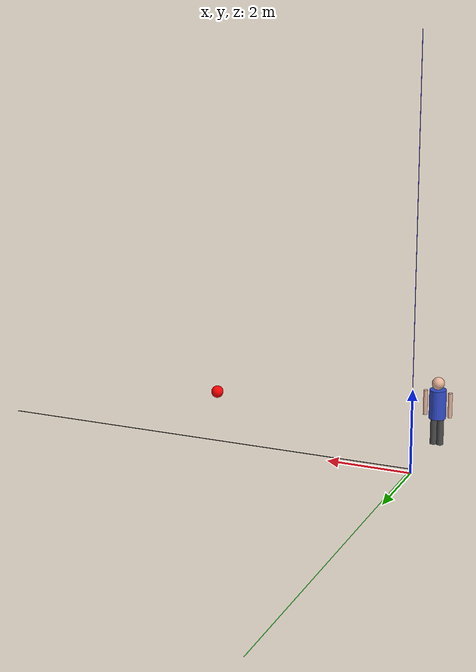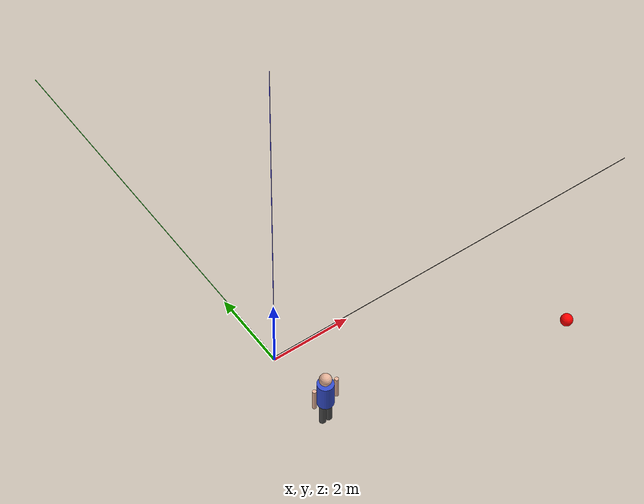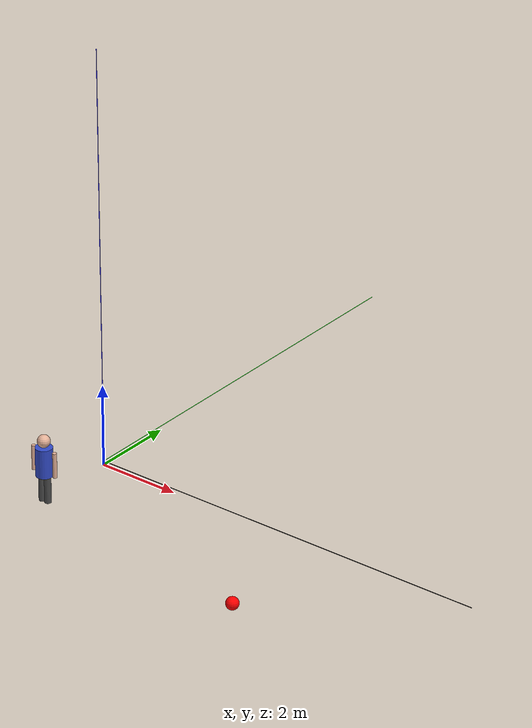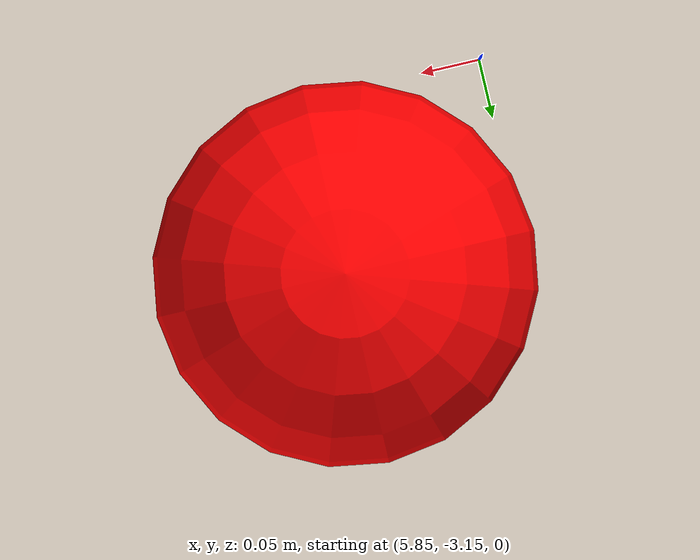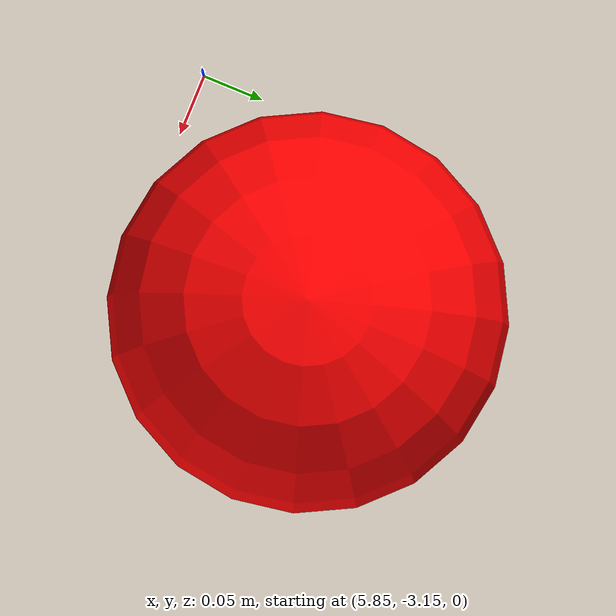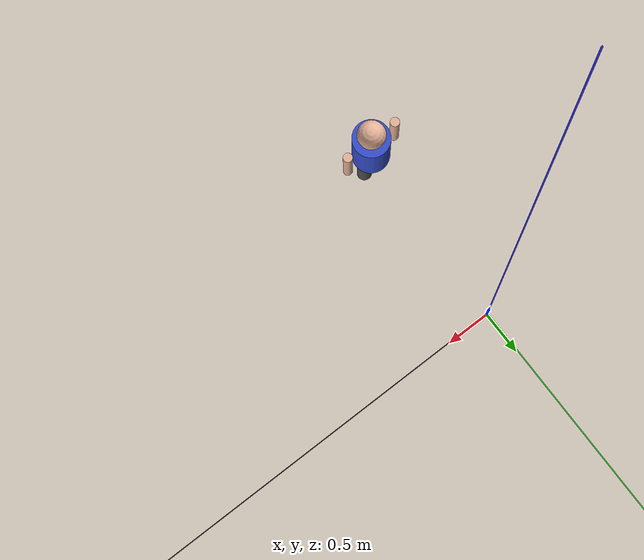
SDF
<sdf version="1.9">
 <world name="iris_danger">
  <physics name="1ms" type="ignore">
   <max_step_size>0.001</max_step_size>
   <real_time_factor>1.0</real_time_factor>
  </physics>
  <wind><linear_velocity>11 11  0</linear_velocity></wind>
  <plugin filename="gz-sim-physics-system" name="gz::sim::systems::Physics"/>
  <plugin filename="gz-sim-sensors-system" name="gz::sim::systems::Sensors">
   <render_engine>ogre2</render_engine>
  </plugin>
  <plugin filename="gz-sim-user-commands-system" name="gz::sim::systems::UserCommands"/>
  <plugin filename="gz-sim-scene-broadcaster-system" name="gz::sim::systems::SceneBroadcaster"/>
  <plugin filename="gz-sim-imu-system" name="gz::sim::systems::Imu"/>
  <plugin filename="gz-sim-navsat-system" name="gz::sim::systems::NavSat"/>
  <plugin filename="gz-sim-apply-link-wrench-system" name="gz::sim::systems::ApplyLinkWrench"/>
  <scene><ambient>1.0 1.0 1.0</ambient><background>0.8 0.8 0.8</background></scene>
  <spherical_coordinates>
   <latitude_deg>-35.363262</latitude_deg>
   <longitude_deg>149.165237</longitude_deg>
   <elevation>584</elevation>
   <heading_deg>0</heading_deg>
   <surface_model>EARTH_WGS84</surface_model>
  </spherical_coordinates>
  <light type="directional" name="sun">
   <pose>0 0 10 0 0 0</pose>
   <diffuse>0.8 0.8 0.8 1</diffuse>
   <specular>0.8 0.8 0.8 1</specular>
   <attenuation>
    <range>1000</range>
    <constant>0.9</constant>
    <linear>0.01</linear>
    <quadratic>0.001</quadratic>
   </attenuation>
   <direction>-0.5 0.1 -0.9</direction>
  </light>
  <model name="axes">
   <static>1</static>
   <link name="link">
    <visual name="r">
     <cast_shadows>0</cast_shadows>
     <pose>5 0 0.1 0 0 0</pose>
     <geometry><box><size>10 0.01 0.01</size></box></geometry>
     <material><ambient>0 0 0 0.8</ambient><diffuse>0 0 0 0.8</diffuse><emissive>0 0 0 0.8</emissive></material>
    </visual>
    <visual name="g">
     <cast_shadows>0</cast_shadows>
     <pose>0 5 0.1 0 0 0</pose>
     <geometry><box><size>0.01 10 0.01</size></box></geometry>
     <material><ambient>0 1 0 0.8</ambient><diffuse>0 1 0 0.8</diffuse><emissive>0 1 0 0.8</emissive></material>
    </visual>
    <visual name="b">
     <cast_shadows>0</cast_shadows>
     <pose>0 0 5.1 0 0 0</pose>
     <geometry><box><size>0.01 0.01 10</size></box></geometry>
     <material><ambient>0 0 1 0.8</ambient><diffuse>0 0 1 0.8</diffuse><emissive>0 0 1 0.8</emissive></material>
    </visual>
    <sensor name="navsat_sensor" type="navsat"><always_on>1</always_on><update_rate>1</update_rate></sensor>
   </link>
  </model>
  <model name="red_ball">
   <static>true</static>
   <pose>6 -3 0.15 0 0 0</pose>
   <link name="ball_link">
    <visual name="visual">
     <geometry><sphere><radius>0.15</radius></sphere></geometry>
     <material>
      <ambient>1.0 0.0 0.0 1</ambient>
      <diffuse>1.0 0.0 0.0 1</diffuse>
      <specular>0.3 0.0 0.0 1</specular>
      <emissive>0.2 0.0 0.0 1</emissive>
     </material>
    </visual>
    <collision name="collision"><geometry><sphere><radius>0.15</radius></sphere></geometry></collision>
   </link>
  </model>
  <model name="person">
   <static>true</static>
   <pose>0 -2 0 0 0 0</pose>
   <link name="body">
    <visual name="torso">
     <pose>0 0 1.0 0 0 0</pose>
     <geometry><cylinder><radius>0.2</radius><length>0.7</length></cylinder></geometry>
     <material><ambient>0.2 0.3 0.8 1</ambient><diffuse>0.2 0.3 0.8 1</diffuse></material>
    </visual>
    <visual name="left_leg">
     <pose>0.08 0 0.4 0 0 0</pose>
     <geometry><cylinder><radius>0.08</radius><length>0.8</length></cylinder></geometry>
     <material><ambient>0.3 0.3 0.3 1</ambient><diffuse>0.3 0.3 0.3 1</diffuse></material>
    </visual>
    <visual name="right_leg">
     <pose>-0.08 0 0.4 0 0 0</pose>
     <geometry><cylinder><radius>0.08</radius><length>0.8</length></cylinder></geometry>
     <material><ambient>0.3 0.3 0.3 1</ambient><diffuse>0.3 0.3 0.3 1</diffuse></material>
    </visual>
    <visual name="head">
     <pose>0 0 1.5 0 0 0</pose>
     <geometry><sphere><radius>0.15</radius></sphere></geometry>
     <material><ambient>0.9 0.7 0.6 1</ambient><diffuse>0.9 0.7 0.6 1</diffuse></material>
    </visual>
    <visual name="left_arm">
     <pose>0.3 0 1.0 0 0 0</pose>
     <geometry><cylinder><radius>0.05</radius><length>0.6</length></cylinder></geometry>
     <material><ambient>0.9 0.7 0.6 1</ambient><diffuse>0.9 0.7 0.6 1</diffuse></material>
    </visual>
    <visual name="right_arm">
     <pose>-0.3 0 1.0 0 0 0</pose>
     <geometry><cylinder><radius>0.05</radius><length>0.6</length></cylinder></geometry>
     <material><ambient>0.9 0.7 0.6 1</ambient><diffuse>0.9 0.7 0.6 1</diffuse></material>
    </visual>
   </link>
  </model>
 </world>
</sdf>
